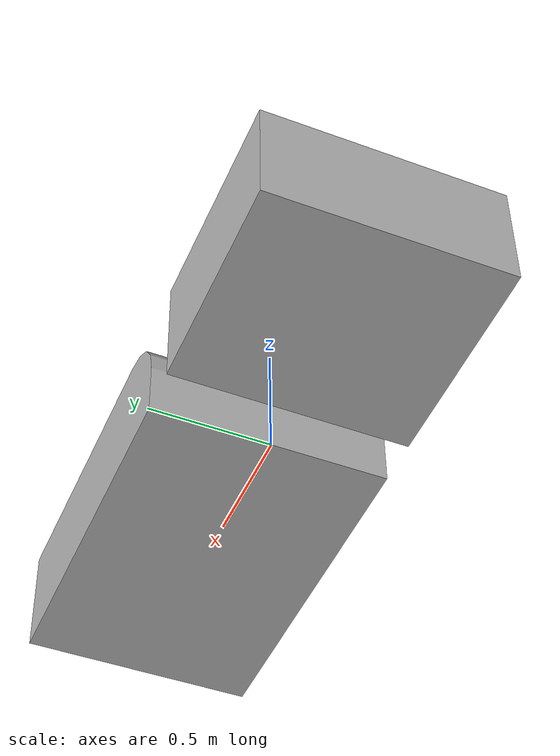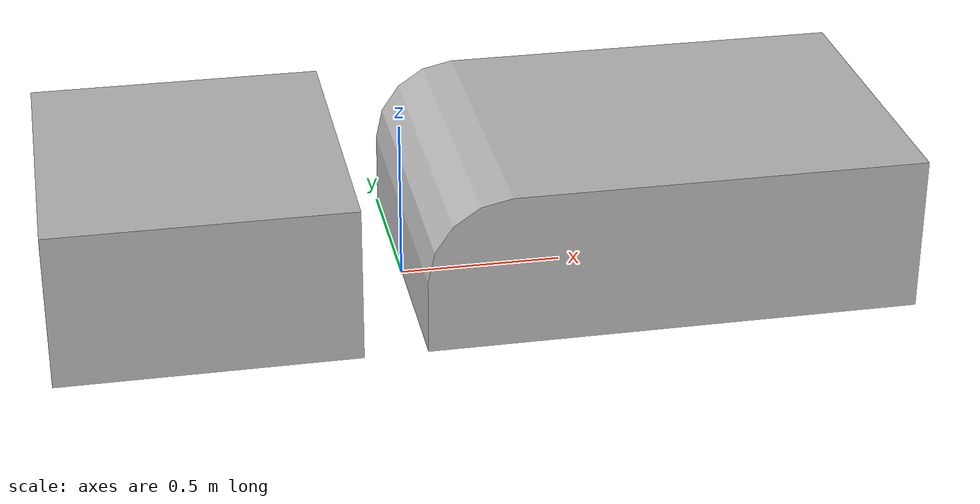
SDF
<?xml version="1.0"?>
<sdf version="1.4">
  <model name="gap_with_phase">
    <pose>0 0 0 0 0 0</pose>
    <static>true</static>
    <link name="link">
      <collision name="collision">
        <pose>0 0 0 0 0 0</pose>
        <geometry>
          <mesh>
            <uri>model://gazebo_worlds/models/gap_with_phase/gap_with_phase.stl</uri>
            <scale>0.1 0.1 0.1</scale>
          </mesh>
        </geometry>
      </collision>
      <visual name="visual">
        <pose>0 0 0 0 0 0</pose>
        <geometry>
          <mesh>
            <uri>model://gazebo_worlds/models/gap_with_phase/gap_with_phase.stl</uri>
            <scale>0.1 0.1 0.1</scale>
          </mesh>
        </geometry>
      </visual>
    </link>
  </model>
</sdf>
